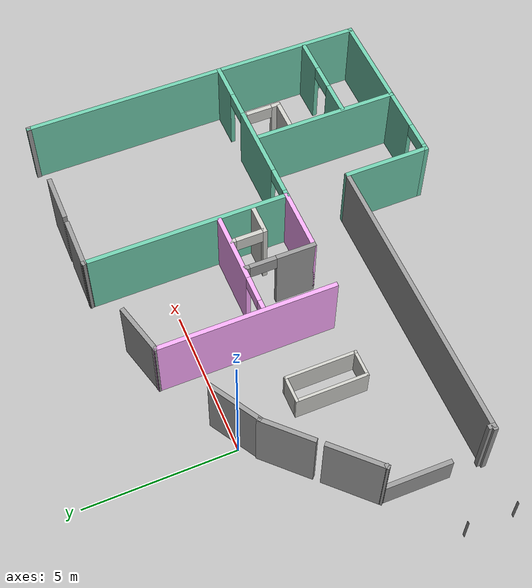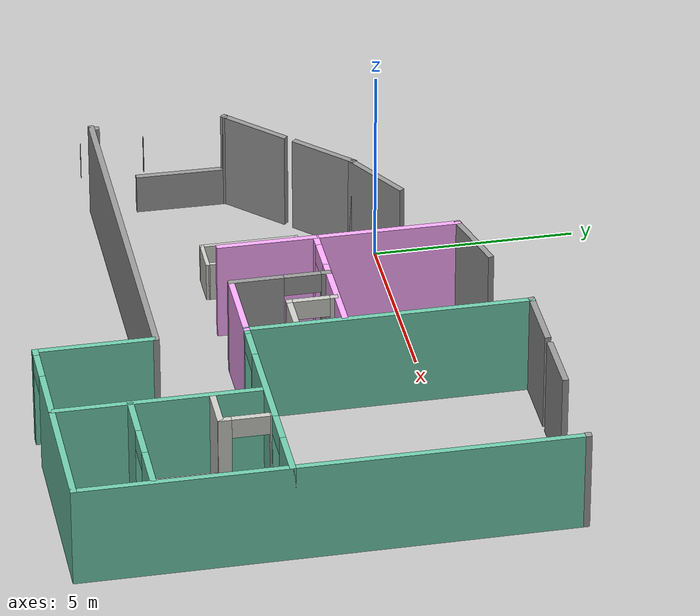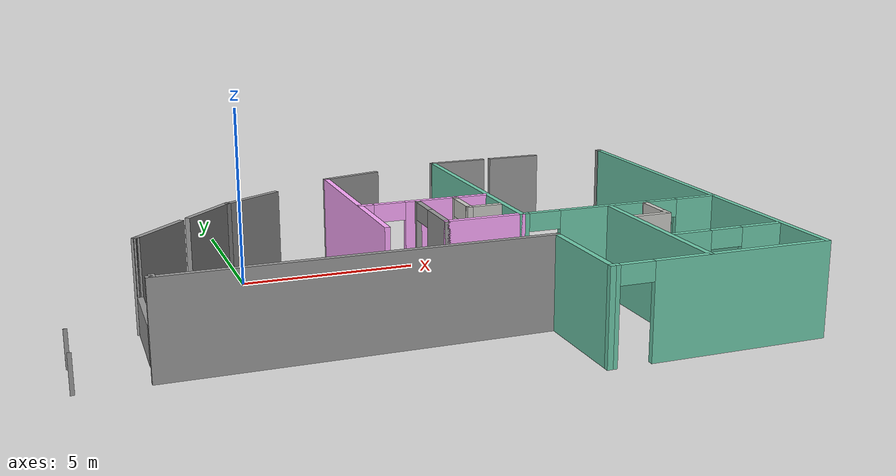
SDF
<?xml version='1.0'?>
<sdf version='1.6'>
  <model name='enso'>
    <pose frame=''>3.71903 -3.47117 0 0 -0 0</pose>
    <link name='Wall_23'>
      <collision name='Wall_23_Collision'>
        <geometry>
          <box>
            <size>12 0.15 2.5</size>
          </box>
        </geometry>
        <pose frame=''>0 0 1.25 0 -0 0</pose>
      </collision>
      <visual name='Wall_23_Visual'>
        <pose frame=''>0 0 1.25 0 -0 0</pose>
        <geometry>
          <box>
            <size>12 0.15 2.5</size>
          </box>
        </geometry>
        <material>
          <script>
            <uri>file://media/materials/scripts/gazebo.material</uri>
            <name>Gazebo/Grey</name>
          </script>
          <ambient>0.435294 0.796078 0.67451 1</ambient>
        </material>
        <meta>
          <layer>0</layer>
        </meta>
      </visual>
      <pose frame=''>8.72974 -0.008427 0 0 -0 1.5708</pose>
    </link>
    <link name='Wall_25'>
      <pose frame=''>5.80474 -5.93343 0 0 -0 3.14159</pose>
      <visual name='Wall_25_Visual_0'>
        <pose frame=''>-0.581761 0 1.25 0 -0 0</pose>
        <geometry>
          <box>
            <size>4.83648 0.15 2.5</size>
          </box>
        </geometry>
        <material>
          <script>
            <uri>file://media/materials/scripts/gazebo.material</uri>
            <name>Gazebo/Grey</name>
          </script>
          <ambient>0.435294 0.796078 0.67451 1</ambient>
        </material>
        <meta>
          <layer>0</layer>
        </meta>
      </visual>
      <collision name='Wall_25_Collision_0'>
        <geometry>
          <box>
            <size>4.83648 0.15 2.5</size>
          </box>
        </geometry>
        <pose frame=''>-0.581761 0 1.25 0 -0 0</pose>
      </collision>
      <visual name='Wall_25_Visual_1'>
        <pose frame=''>2.86824 0 1.25 0 -0 0</pose>
        <geometry>
          <box>
            <size>0.263522 0.15 2.5</size>
          </box>
        </geometry>
        <material>
          <script>
            <uri>file://media/materials/scripts/gazebo.material</uri>
            <name>Gazebo/Grey</name>
          </script>
          <ambient>0.435294 0.796078 0.67451 1</ambient>
        </material>
        <meta>
          <layer>0</layer>
        </meta>
      </visual>
      <collision name='Wall_25_Collision_1'>
        <geometry>
          <box>
            <size>0.263522 0.15 2.5</size>
          </box>
        </geometry>
        <pose frame=''>2.86824 0 1.25 0 -0 0</pose>
      </collision>
      <visual name='Wall_25_Visual_2'>
        <pose frame=''>2.28648 0 2.25 0 -0 0</pose>
        <geometry>
          <box>
            <size>0.9 0.15 0.5</size>
          </box>
        </geometry>
        <material>
          <script>
            <uri>file://media/materials/scripts/gazebo.material</uri>
            <name>Gazebo/Grey</name>
          </script>
          <ambient>0.435294 0.796078 0.67451 1</ambient>
        </material>
        <meta>
          <layer>0</layer>
        </meta>
      </visual>
      <collision name='Wall_25_Collision_2'>
        <geometry>
          <box>
            <size>0.9 0.15 0.5</size>
          </box>
        </geometry>
        <pose frame=''>2.28648 0 2.25 0 -0 0</pose>
      </collision>
    </link>
    <link name='Wall_26'>
      <collision name='Wall_26_Collision'>
        <geometry>
          <box>
            <size>3 0.15 2.5</size>
          </box>
        </geometry>
        <pose frame=''>0 0 1.25 0 -0 0</pose>
      </collision>
      <visual name='Wall_26_Visual'>
        <pose frame=''>0 0 1.25 0 -0 0</pose>
        <geometry>
          <box>
            <size>3 0.15 2.5</size>
          </box>
        </geometry>
        <material>
          <script>
            <uri>file://media/materials/scripts/gazebo.material</uri>
            <name>Gazebo/Grey</name>
          </script>
          <ambient>0.435294 0.796078 0.67451 1</ambient>
        </material>
        <meta>
          <layer>0</layer>
        </meta>
      </visual>
      <pose frame=''>2.87974 -4.50843 0 0 -0 1.5708</pose>
    </link>
    <link name='Wall_27'>
      <collision name='Wall_27_Collision'>
        <geometry>
          <box>
            <size>10 0.15 2.5</size>
          </box>
        </geometry>
        <pose frame=''>0 0 1.25 0 -0 0</pose>
      </collision>
      <visual name='Wall_27_Visual'>
        <pose frame=''>0 0 1.25 0 -0 0</pose>
        <geometry>
          <box>
            <size>10 0.15 2.5</size>
          </box>
        </geometry>
        <material>
          <script>
            <uri>file://media/materials/scripts/gazebo.material</uri>
            <name>Gazebo/Grey</name>
          </script>
          <ambient>1 1 1 1</ambient>
        </material>
        <meta>
          <layer>0</layer>
        </meta>
      </visual>
      <pose frame=''>-2.04526 -3.08343 0 0 -0 3.14159</pose>
    </link>
    <link name='Wall_32'>
      <pose frame=''>5.80474 5.91657 0 0 -0 3.14159</pose>
      <visual name='Wall_32_Visual_0'>
        <pose frame=''>-2.91311 0 1.25 0 -0 0</pose>
        <geometry>
          <box>
            <size>0.173771 0.15 2.5</size>
          </box>
        </geometry>
        <material>
          <script>
            <uri>file://media/materials/scripts/gazebo.material</uri>
            <name>Gazebo/Grey</name>
          </script>
          <ambient>1 1 1 1</ambient>
        </material>
        <meta>
          <layer>0</layer>
        </meta>
      </visual>
      <collision name='Wall_32_Collision_0'>
        <geometry>
          <box>
            <size>0.173771 0.15 2.5</size>
          </box>
        </geometry>
        <pose frame=''>-2.91311 0 1.25 0 -0 0</pose>
      </collision>
      <visual name='Wall_32_Visual_1'>
        <pose frame=''>0.198771 0 1.25 0 -0 0</pose>
        <geometry>
          <box>
            <size>1.65 0.15 2.5</size>
          </box>
        </geometry>
        <material>
          <script>
            <uri>file://media/materials/scripts/gazebo.material</uri>
            <name>Gazebo/Grey</name>
          </script>
          <ambient>1 1 1 1</ambient>
        </material>
        <meta>
          <layer>0</layer>
        </meta>
      </visual>
      <collision name='Wall_32_Collision_1'>
        <geometry>
          <box>
            <size>1.65 0.15 2.5</size>
          </box>
        </geometry>
        <pose frame=''>0.198771 0 1.25 0 -0 0</pose>
      </collision>
      <visual name='Wall_32_Visual_2'>
        <pose frame=''>2.10689 0 1.25 0 -0 0</pose>
        <geometry>
          <box>
            <size>1.78623 0.15 2.5</size>
          </box>
        </geometry>
        <material>
          <script>
            <uri>file://media/materials/scripts/gazebo.material</uri>
            <name>Gazebo/Grey</name>
          </script>
          <ambient>1 1 1 1</ambient>
        </material>
        <meta>
          <layer>0</layer>
        </meta>
      </visual>
      <collision name='Wall_32_Collision_2'>
        <geometry>
          <box>
            <size>1.78623 0.15 2.5</size>
          </box>
        </geometry>
        <pose frame=''>2.10689 0 1.25 0 -0 0</pose>
      </collision>
    </link>
    <link name='Wall_33'>
      <pose frame=''>1.02033 5.41835 0 0 0 -2.87979</pose>
      <visual name='Wall_33_Visual_0'>
        <pose frame=''>-1.91898 0 1.25 0 -0 0</pose>
        <geometry>
          <box>
            <size>0.16203 0.15 2.5</size>
          </box>
        </geometry>
        <material>
          <script>
            <uri>file://media/materials/scripts/gazebo.material</uri>
            <name>Gazebo/Grey</name>
          </script>
          <ambient>1 1 1 1</ambient>
        </material>
        <meta>
          <layer>0</layer>
        </meta>
      </visual>
      <collision name='Wall_33_Collision_0'>
        <geometry>
          <box>
            <size>0.16203 0.15 2.5</size>
          </box>
        </geometry>
        <pose frame=''>-1.91898 0 1.25 0 -0 0</pose>
      </collision>
      <visual name='Wall_33_Visual_1'>
        <pose frame=''>1.08102 0 1.25 0 -0 0</pose>
        <geometry>
          <box>
            <size>1.83797 0.15 2.5</size>
          </box>
        </geometry>
        <material>
          <script>
            <uri>file://media/materials/scripts/gazebo.material</uri>
            <name>Gazebo/Grey</name>
          </script>
          <ambient>1 1 1 1</ambient>
        </material>
        <meta>
          <layer>0</layer>
        </meta>
      </visual>
      <collision name='Wall_33_Collision_1'>
        <geometry>
          <box>
            <size>1.83797 0.15 2.5</size>
          </box>
        </geometry>
        <pose frame=''>1.08102 0 1.25 0 -0 0</pose>
      </collision>
      <visual name='Wall_33_Visual_2'>
        <pose frame=''>1.97601 0 1.25 0 -0 0</pose>
        <geometry>
          <box>
            <size>0.047989 0.15 2.5</size>
          </box>
        </geometry>
        <material>
          <script>
            <uri>file://media/materials/scripts/gazebo.material</uri>
            <name>Gazebo/Grey</name>
          </script>
          <ambient>1 1 1 1</ambient>
        </material>
        <meta>
          <layer>0</layer>
        </meta>
      </visual>
      <collision name='Wall_33_Collision_2'>
        <geometry>
          <box>
            <size>0.047989 0.15 2.5</size>
          </box>
        </geometry>
        <pose frame=''>1.97601 0 1.25 0 -0 0</pose>
      </collision>
    </link>
    <link name='Wall_38'>
      <pose frame=''>-2.48601 3.94754 0 0 0 -2.60816</pose>
      <visual name='Wall_38_Visual_0'>
        <pose frame=''>-1.94853 0 1.25 0 -0 0</pose>
        <geometry>
          <box>
            <size>0.078275 0.15 2.5</size>
          </box>
        </geometry>
        <material>
          <script>
            <uri>file://media/materials/scripts/gazebo.material</uri>
            <name>Gazebo/Grey</name>
          </script>
          <ambient>1 1 1 1</ambient>
        </material>
        <meta>
          <layer>0</layer>
        </meta>
      </visual>
      <collision name='Wall_38_Collision_0'>
        <geometry>
          <box>
            <size>0.078275 0.15 2.5</size>
          </box>
        </geometry>
        <pose frame=''>-1.94853 0 1.25 0 -0 0</pose>
      </collision>
      <visual name='Wall_38_Visual_1'>
        <pose frame=''>1.03914 0 1.25 0 -0 0</pose>
        <geometry>
          <box>
            <size>1.89707 0.15 2.5</size>
          </box>
        </geometry>
        <material>
          <script>
            <uri>file://media/materials/scripts/gazebo.material</uri>
            <name>Gazebo/Grey</name>
          </script>
          <ambient>1 1 1 1</ambient>
        </material>
        <meta>
          <layer>0</layer>
        </meta>
      </visual>
      <collision name='Wall_38_Collision_1'>
        <geometry>
          <box>
            <size>1.89707 0.15 2.5</size>
          </box>
        </geometry>
        <pose frame=''>1.03914 0 1.25 0 -0 0</pose>
      </collision>
      <visual name='Wall_38_Visual_2'>
        <pose frame=''>1.91783 0 1.25 0 -0 0</pose>
        <geometry>
          <box>
            <size>0.139687 0.15 2.5</size>
          </box>
        </geometry>
        <material>
          <script>
            <uri>file://media/materials/scripts/gazebo.material</uri>
            <name>Gazebo/Grey</name>
          </script>
          <ambient>1 1 1 1</ambient>
        </material>
        <meta>
          <layer>0</layer>
        </meta>
      </visual>
      <collision name='Wall_38_Collision_2'>
        <geometry>
          <box>
            <size>0.139687 0.15 2.5</size>
          </box>
        </geometry>
        <pose frame=''>1.91783 0 1.25 0 -0 0</pose>
      </collision>
    </link>
    <link name='Wall_39'>
      <pose frame=''>-5.51449 1.62406 0 0 0 -2.35634</pose>
      <visual name='Wall_39_Visual_0'>
        <pose frame=''>-1.08396 0 1.25 0 -0 0</pose>
        <geometry>
          <box>
            <size>1.83207 0.15 2.5</size>
          </box>
        </geometry>
        <material>
          <script>
            <uri>file://media/materials/scripts/gazebo.material</uri>
            <name>Gazebo/Grey</name>
          </script>
          <ambient>1 1 1 1</ambient>
        </material>
        <meta>
          <layer>0</layer>
        </meta>
      </visual>
      <collision name='Wall_39_Collision_0'>
        <geometry>
          <box>
            <size>1.83207 0.15 2.5</size>
          </box>
        </geometry>
        <pose frame=''>-1.08396 0 1.25 0 -0 0</pose>
      </collision>
      <visual name='Wall_39_Visual_1'>
        <pose frame=''>1.03265 0 1.25 0 -0 0</pose>
        <geometry>
          <box>
            <size>1.93469 0.15 2.5</size>
          </box>
        </geometry>
        <material>
          <script>
            <uri>file://media/materials/scripts/gazebo.material</uri>
            <name>Gazebo/Grey</name>
          </script>
          <ambient>1 1 1 1</ambient>
        </material>
        <meta>
          <layer>0</layer>
        </meta>
      </visual>
      <collision name='Wall_39_Collision_1'>
        <geometry>
          <box>
            <size>1.93469 0.15 2.5</size>
          </box>
        </geometry>
        <pose frame=''>1.03265 0 1.25 0 -0 0</pose>
      </collision>
      <visual name='Wall_39_Visual_2'>
        <pose frame=''>1.96603 0 1.25 0 -0 0</pose>
        <geometry>
          <box>
            <size>0.067924 0.15 2.5</size>
          </box>
        </geometry>
        <material>
          <script>
            <uri>file://media/materials/scripts/gazebo.material</uri>
            <name>Gazebo/Grey</name>
          </script>
          <ambient>1 1 1 1</ambient>
        </material>
        <meta>
          <layer>0</layer>
        </meta>
      </visual>
      <collision name='Wall_39_Collision_2'>
        <geometry>
          <box>
            <size>0.067924 0.15 2.5</size>
          </box>
        </geometry>
        <pose frame=''>1.96603 0 1.25 0 -0 0</pose>
      </collision>
    </link>
    <link name='Wall_40'>
      <pose frame=''>-6.87587 -1.41191 0 0 0 -1.58291</pose>
      <visual name='Wall_40_Visual_0'>
        <pose frame=''>-1.67475 0 1.25 0 -0 0</pose>
        <geometry>
          <box>
            <size>0.130578 0.15 2.5</size>
          </box>
        </geometry>
        <material>
          <script>
            <uri>file://media/materials/scripts/gazebo.material</uri>
            <name>Gazebo/Grey</name>
          </script>
          <ambient>1 1 1 1</ambient>
        </material>
        <meta>
          <layer>0</layer>
        </meta>
      </visual>
      <collision name='Wall_40_Collision_0'>
        <geometry>
          <box>
            <size>0.130578 0.15 2.5</size>
          </box>
        </geometry>
        <pose frame=''>-1.67475 0 1.25 0 -0 0</pose>
      </collision>
      <visual name='Wall_40_Visual_1'>
        <pose frame=''>1.61355 0 1.25 0 -0 0</pose>
        <geometry>
          <box>
            <size>0.252987 0.15 2.5</size>
          </box>
        </geometry>
        <material>
          <script>
            <uri>file://media/materials/scripts/gazebo.material</uri>
            <name>Gazebo/Grey</name>
          </script>
          <ambient>1 1 1 1</ambient>
        </material>
        <meta>
          <layer>0</layer>
        </meta>
      </visual>
      <collision name='Wall_40_Collision_1'>
        <geometry>
          <box>
            <size>0.252987 0.15 2.5</size>
          </box>
        </geometry>
        <pose frame=''>1.61355 0 1.25 0 -0 0</pose>
      </collision>
      <visual name='Wall_40_Visual_2'>
        <pose frame=''>-0.511205 0 0.5 0 -0 0</pose>
        <geometry>
          <box>
            <size>2.19652 0.15 1</size>
          </box>
        </geometry>
        <material>
          <script>
            <uri>file://media/materials/scripts/gazebo.material</uri>
            <name>Gazebo/Grey</name>
          </script>
          <ambient>1 1 1 1</ambient>
        </material>
        <meta>
          <layer>0</layer>
        </meta>
      </visual>
      <collision name='Wall_40_Collision_2'>
        <geometry>
          <box>
            <size>2.19652 0.15 1</size>
          </box>
        </geometry>
        <pose frame=''>-0.511205 0 0.5 0 -0 0</pose>
      </collision>
    </link>
    <link name='Wall_42'>
      <pose frame=''>-7.82104 -3.07683 0 0 -0 3.14159</pose>
      <visual name='Wall_42_Visual_0'>
        <pose frame=''>-0.947929 0 0.5 0 -0 0</pose>
        <geometry>
          <box>
            <size>0.054143 0.1 1</size>
          </box>
        </geometry>
        <material>
          <script>
            <uri>file://media/materials/scripts/gazebo.material</uri>
            <name>Gazebo/Grey</name>
          </script>
          <ambient>1 1 1 1</ambient>
        </material>
        <meta>
          <layer>0</layer>
        </meta>
      </visual>
      <collision name='Wall_42_Collision_0'>
        <geometry>
          <box>
            <size>0.054143 0.1 1</size>
          </box>
        </geometry>
        <pose frame=''>-0.947929 0 0.5 0 -0 0</pose>
      </collision>
    </link>
    <link name='Wall_44'>
      <pose frame=''>-7.79487 -0.65641 0 0 0 -2.37228</pose>
      <visual name='Wall_44_Visual_0'>
        <pose frame=''>-1.32003 0 0.5 0 -0 0</pose>
        <geometry>
          <box>
            <size>0.074579 0.1 1</size>
          </box>
        </geometry>
        <material>
          <script>
            <uri>file://media/materials/scripts/gazebo.material</uri>
            <name>Gazebo/Grey</name>
          </script>
          <ambient>1 1 1 1</ambient>
        </material>
        <meta>
          <layer>0</layer>
        </meta>
      </visual>
      <collision name='Wall_44_Collision_0'>
        <geometry>
          <box>
            <size>0.074579 0.1 1</size>
          </box>
        </geometry>
        <pose frame=''>-1.32003 0 0.5 0 -0 0</pose>
      </collision>
    </link>
    <link name='Wall_45'>
      <pose frame=''>-8.74004 -2.32133 0 0 0 -1.57874</pose>
      <visual name='Wall_45_Visual_0'>
        <pose frame=''>-0.801589 0 0.5 0 -0 0</pose>
        <geometry>
          <box>
            <size>0.008279 0.1 1</size>
          </box>
        </geometry>
        <material>
          <script>
            <uri>file://media/materials/scripts/gazebo.material</uri>
            <name>Gazebo/Grey</name>
          </script>
          <ambient>1 1 1 1</ambient>
        </material>
        <meta>
          <layer>0</layer>
        </meta>
      </visual>
      <collision name='Wall_45_Collision_0'>
        <geometry>
          <box>
            <size>0.008279 0.1 1</size>
          </box>
        </geometry>
        <pose frame=''>-0.801589 0 0.5 0 -0 0</pose>
      </collision>
      <visual name='Wall_45_Visual_1'>
        <pose frame=''>0.80414 0 0.5 0 -0 0</pose>
        <geometry>
          <box>
            <size>0.003179 0.1 1</size>
          </box>
        </geometry>
        <material>
          <script>
            <uri>file://media/materials/scripts/gazebo.material</uri>
            <name>Gazebo/Grey</name>
          </script>
          <ambient>1 1 1 1</ambient>
        </material>
        <meta>
          <layer>0</layer>
        </meta>
      </visual>
      <collision name='Wall_45_Collision_1'>
        <geometry>
          <box>
            <size>0.003179 0.1 1</size>
          </box>
        </geometry>
        <pose frame=''>0.80414 0 0.5 0 -0 0</pose>
      </collision>
    </link>
    <link name='Wall_47'>
      <collision name='Wall_47_Collision'>
        <geometry>
          <box>
            <size>7 0.15 2.5</size>
          </box>
        </geometry>
        <pose frame=''>0 0 1.25 0 -0 0</pose>
      </collision>
      <visual name='Wall_47_Visual'>
        <pose frame=''>0 0 1.25 0 -0 0</pose>
        <geometry>
          <box>
            <size>7 0.15 2.5</size>
          </box>
        </geometry>
        <material>
          <script>
            <uri>file://media/materials/scripts/gazebo.material</uri>
            <name>Gazebo/Grey</name>
          </script>
          <ambient>0.435294 0.796078 0.67451 1</ambient>
        </material>
        <meta>
          <layer>0</layer>
        </meta>
      </visual>
      <pose frame=''>2.87974 2.49157 0 0 0 -1.5708</pose>
    </link>
    <link name='Wall_49'>
      <collision name='Wall_49_Collision'>
        <geometry>
          <box>
            <size>6 0.15 2.5</size>
          </box>
        </geometry>
        <pose frame=''>0 0 1.25 0 -0 0</pose>
      </collision>
      <visual name='Wall_49_Visual'>
        <pose frame=''>0 0 1.25 0 -0 0</pose>
        <geometry>
          <box>
            <size>6 0.15 2.5</size>
          </box>
        </geometry>
        <material>
          <script>
            <uri>file://media/materials/scripts/gazebo.material</uri>
            <name>Gazebo/Grey</name>
          </script>
          <ambient>1 0.666667 1 1</ambient>
        </material>
        <meta>
          <layer>0</layer>
        </meta>
      </visual>
      <pose frame=''>-0.839078 1.99512 0 0 0 -1.5708</pose>
    </link>
    <link name='Wall_51'>
      <pose frame=''>0.983034 1.42639 0 0 -0 0</pose>
      <visual name='Wall_51_Visual_0'>
        <pose frame=''>-1.66426 0 1.25 0 -0 0</pose>
        <geometry>
          <box>
            <size>0.421471 0.15 2.5</size>
          </box>
        </geometry>
        <material>
          <script>
            <uri>file://media/materials/scripts/gazebo.material</uri>
            <name>Gazebo/Grey</name>
          </script>
          <ambient>1 0.666667 1 1</ambient>
        </material>
        <meta>
          <layer>0</layer>
        </meta>
      </visual>
      <collision name='Wall_51_Collision_0'>
        <geometry>
          <box>
            <size>0.421471 0.15 2.5</size>
          </box>
        </geometry>
        <pose frame=''>-1.66426 0 1.25 0 -0 0</pose>
      </collision>
      <visual name='Wall_51_Visual_1'>
        <pose frame=''>0.660736 0 1.25 0 -0 0</pose>
        <geometry>
          <box>
            <size>2.42853 0.15 2.5</size>
          </box>
        </geometry>
        <material>
          <script>
            <uri>file://media/materials/scripts/gazebo.material</uri>
            <name>Gazebo/Grey</name>
          </script>
          <ambient>1 0.666667 1 1</ambient>
        </material>
        <meta>
          <layer>0</layer>
        </meta>
      </visual>
      <collision name='Wall_51_Collision_1'>
        <geometry>
          <box>
            <size>2.42853 0.15 2.5</size>
          </box>
        </geometry>
        <pose frame=''>0.660736 0 1.25 0 -0 0</pose>
      </collision>
      <visual name='Wall_51_Visual_2'>
        <pose frame=''>-1.00353 0 2.25 0 -0 0</pose>
        <geometry>
          <box>
            <size>0.9 0.15 0.5</size>
          </box>
        </geometry>
        <material>
          <script>
            <uri>file://media/materials/scripts/gazebo.material</uri>
            <name>Gazebo/Grey</name>
          </script>
          <ambient>1 0.666667 1 1</ambient>
        </material>
        <meta>
          <layer>0</layer>
        </meta>
      </visual>
      <collision name='Wall_51_Collision_2'>
        <geometry>
          <box>
            <size>0.9 0.15 0.5</size>
          </box>
        </geometry>
        <pose frame=''>-1.00353 0 2.25 0 -0 0</pose>
      </collision>
    </link>
    <link name='Wall_53'>
      <collision name='Wall_53_Collision'>
        <geometry>
          <box>
            <size>2.25 0.15 2.5</size>
          </box>
        </geometry>
        <pose frame=''>0 0 1.25 0 -0 0</pose>
      </collision>
      <visual name='Wall_53_Visual'>
        <pose frame=''>0 0 1.25 0 -0 0</pose>
        <geometry>
          <box>
            <size>2.25 0.15 2.5</size>
          </box>
        </geometry>
        <material>
          <script>
            <uri>file://media/materials/scripts/gazebo.material</uri>
            <name>Gazebo/Grey</name>
          </script>
          <ambient>1 0.666667 1 1</ambient>
        </material>
        <meta>
          <layer>0</layer>
        </meta>
      </visual>
      <pose frame=''>1.82974 -0.933428 0 0 -0 3.14159</pose>
    </link>
    <link name='Wall_54'>
      <pose frame=''>0.779736 0.241573 0 0 -0 1.5708</pose>
      <visual name='Wall_54_Visual_0'>
        <pose frame=''>-0.57517 0 1.25 0 -0 0</pose>
        <geometry>
          <box>
            <size>1.34966 0.15 2.5</size>
          </box>
        </geometry>
        <material>
          <script>
            <uri>file://media/materials/scripts/gazebo.material</uri>
            <name>Gazebo/Grey</name>
          </script>
          <ambient>1 1 1 1</ambient>
        </material>
        <meta>
          <layer>0</layer>
        </meta>
      </visual>
      <collision name='Wall_54_Collision_0'>
        <geometry>
          <box>
            <size>1.34966 0.15 2.5</size>
          </box>
        </geometry>
        <pose frame=''>-0.57517 0 1.25 0 -0 0</pose>
      </collision>
      <visual name='Wall_54_Visual_1'>
        <pose frame=''>1.12483 0 1.25 0 -0 0</pose>
        <geometry>
          <box>
            <size>0.250339 0.15 2.5</size>
          </box>
        </geometry>
        <material>
          <script>
            <uri>file://media/materials/scripts/gazebo.material</uri>
            <name>Gazebo/Grey</name>
          </script>
          <ambient>1 1 1 1</ambient>
        </material>
        <meta>
          <layer>0</layer>
        </meta>
      </visual>
      <collision name='Wall_54_Collision_1'>
        <geometry>
          <box>
            <size>0.250339 0.15 2.5</size>
          </box>
        </geometry>
        <pose frame=''>1.12483 0 1.25 0 -0 0</pose>
      </collision>
      <visual name='Wall_54_Visual_2'>
        <pose frame=''>0.549661 0 2.25 0 -0 0</pose>
        <geometry>
          <box>
            <size>0.9 0.15 0.5</size>
          </box>
        </geometry>
        <material>
          <script>
            <uri>file://media/materials/scripts/gazebo.material</uri>
            <name>Gazebo/Grey</name>
          </script>
          <ambient>1 1 1 1</ambient>
        </material>
        <meta>
          <layer>0</layer>
        </meta>
      </visual>
      <collision name='Wall_54_Collision_2'>
        <geometry>
          <box>
            <size>0.9 0.15 0.5</size>
          </box>
        </geometry>
        <pose frame=''>0.549661 0 2.25 0 -0 0</pose>
      </collision>
    </link>
    <link name='Wall_58'>
      <pose frame=''>5.80474 -0.933428 0 0 -0 0</pose>
      <visual name='Wall_58_Visual_0'>
        <pose frame=''>-2.8632 0 1.25 0 -0 0</pose>
        <geometry>
          <box>
            <size>0.273604 0.15 2.5</size>
          </box>
        </geometry>
        <material>
          <script>
            <uri>file://media/materials/scripts/gazebo.material</uri>
            <name>Gazebo/Grey</name>
          </script>
          <ambient>0.435294 0.796078 0.67451 1</ambient>
        </material>
        <meta>
          <layer>0</layer>
        </meta>
      </visual>
      <collision name='Wall_58_Collision_0'>
        <geometry>
          <box>
            <size>0.273604 0.15 2.5</size>
          </box>
        </geometry>
        <pose frame=''>-2.8632 0 1.25 0 -0 0</pose>
      </collision>
      <visual name='Wall_58_Visual_1'>
        <pose frame=''>-0.50702 0 1.25 0 -0 0</pose>
        <geometry>
          <box>
            <size>2.63875 0.15 2.5</size>
          </box>
        </geometry>
        <material>
          <script>
            <uri>file://media/materials/scripts/gazebo.material</uri>
            <name>Gazebo/Grey</name>
          </script>
          <ambient>0.435294 0.796078 0.67451 1</ambient>
        </material>
        <meta>
          <layer>0</layer>
        </meta>
      </visual>
      <collision name='Wall_58_Collision_1'>
        <geometry>
          <box>
            <size>2.63875 0.15 2.5</size>
          </box>
        </geometry>
        <pose frame=''>-0.50702 0 1.25 0 -0 0</pose>
      </collision>
      <visual name='Wall_58_Visual_2'>
        <pose frame=''>2.35618 0 1.25 0 -0 0</pose>
        <geometry>
          <box>
            <size>1.28764 0.15 2.5</size>
          </box>
        </geometry>
        <material>
          <script>
            <uri>file://media/materials/scripts/gazebo.material</uri>
            <name>Gazebo/Grey</name>
          </script>
          <ambient>0.435294 0.796078 0.67451 1</ambient>
        </material>
        <meta>
          <layer>0</layer>
        </meta>
      </visual>
      <collision name='Wall_58_Collision_2'>
        <geometry>
          <box>
            <size>1.28764 0.15 2.5</size>
          </box>
        </geometry>
        <pose frame=''>2.35618 0 1.25 0 -0 0</pose>
      </collision>
      <visual name='Wall_58_Visual_3'>
        <pose frame=''>-2.2764 0 2.25 0 -0 0</pose>
        <geometry>
          <box>
            <size>0.9 0.15 0.5</size>
          </box>
        </geometry>
        <material>
          <script>
            <uri>file://media/materials/scripts/gazebo.material</uri>
            <name>Gazebo/Grey</name>
          </script>
          <ambient>0.435294 0.796078 0.67451 1</ambient>
        </material>
        <meta>
          <layer>0</layer>
        </meta>
      </visual>
      <collision name='Wall_58_Collision_3'>
        <geometry>
          <box>
            <size>0.9 0.15 0.5</size>
          </box>
        </geometry>
        <pose frame=''>-2.2764 0 2.25 0 -0 0</pose>
      </collision>
      <visual name='Wall_58_Visual_4'>
        <pose frame=''>1.26236 0 2.25 0 -0 0</pose>
        <geometry>
          <box>
            <size>0.9 0.15 0.5</size>
          </box>
        </geometry>
        <material>
          <script>
            <uri>file://media/materials/scripts/gazebo.material</uri>
            <name>Gazebo/Grey</name>
          </script>
          <ambient>0.435294 0.796078 0.67451 1</ambient>
        </material>
        <meta>
          <layer>0</layer>
        </meta>
      </visual>
      <collision name='Wall_58_Collision_4'>
        <geometry>
          <box>
            <size>0.9 0.15 0.5</size>
          </box>
        </geometry>
        <pose frame=''>1.26236 0 2.25 0 -0 0</pose>
      </collision>
    </link>
    <link name='Wall_60'>
      <collision name='Wall_60_Collision'>
        <geometry>
          <box>
            <size>5 0.15 2.5</size>
          </box>
        </geometry>
        <pose frame=''>0 0 1.25 0 -0 0</pose>
      </collision>
      <visual name='Wall_60_Visual'>
        <pose frame=''>0 0 1.25 0 -0 0</pose>
        <geometry>
          <box>
            <size>5 0.15 2.5</size>
          </box>
        </geometry>
        <material>
          <script>
            <uri>file://media/materials/scripts/gazebo.material</uri>
            <name>Gazebo/Grey</name>
          </script>
          <ambient>0.435294 0.796078 0.67451 1</ambient>
        </material>
        <meta>
          <layer>0</layer>
        </meta>
      </visual>
      <pose frame=''>5.45399 -3.49832 0 0 -0 1.5708</pose>
    </link>
    <link name='Wall_62'>
      <pose frame=''>7.06448 -4.10858 0 0 -0 0</pose>
      <visual name='Wall_62_Visual_0'>
        <pose frame=''>-1.03619 0 1.25 0 -0 0</pose>
        <geometry>
          <box>
            <size>1.17762 0.15 2.5</size>
          </box>
        </geometry>
        <material>
          <script>
            <uri>file://media/materials/scripts/gazebo.material</uri>
            <name>Gazebo/Grey</name>
          </script>
          <ambient>0.435294 0.796078 0.67451 1</ambient>
        </material>
        <meta>
          <layer>0</layer>
        </meta>
      </visual>
      <collision name='Wall_62_Collision_0'>
        <geometry>
          <box>
            <size>1.17762 0.15 2.5</size>
          </box>
        </geometry>
        <pose frame=''>-1.03619 0 1.25 0 -0 0</pose>
      </collision>
      <visual name='Wall_62_Visual_1'>
        <pose frame=''>1.03881 0 1.25 0 -0 0</pose>
        <geometry>
          <box>
            <size>1.17239 0.15 2.5</size>
          </box>
        </geometry>
        <material>
          <script>
            <uri>file://media/materials/scripts/gazebo.material</uri>
            <name>Gazebo/Grey</name>
          </script>
          <ambient>0.435294 0.796078 0.67451 1</ambient>
        </material>
        <meta>
          <layer>0</layer>
        </meta>
      </visual>
      <collision name='Wall_62_Collision_1'>
        <geometry>
          <box>
            <size>1.17239 0.15 2.5</size>
          </box>
        </geometry>
        <pose frame=''>1.03881 0 1.25 0 -0 0</pose>
      </collision>
      <visual name='Wall_62_Visual_2'>
        <pose frame=''>0.002615 0 2.25 0 -0 0</pose>
        <geometry>
          <box>
            <size>0.9 0.15 0.5</size>
          </box>
        </geometry>
        <material>
          <script>
            <uri>file://media/materials/scripts/gazebo.material</uri>
            <name>Gazebo/Grey</name>
          </script>
          <ambient>0.435294 0.796078 0.67451 1</ambient>
        </material>
        <meta>
          <layer>0</layer>
        </meta>
      </visual>
      <collision name='Wall_62_Collision_2'>
        <geometry>
          <box>
            <size>0.9 0.15 0.5</size>
          </box>
        </geometry>
        <pose frame=''>0.002615 0 2.25 0 -0 0</pose>
      </collision>
    </link>
    <link name='Wall_66'>
      <collision name='Wall_66_Collision'>
        <geometry>
          <box>
            <size>2.45 0.1 1</size>
          </box>
        </geometry>
        <pose frame=''>0 0 0.5 0 -0 0</pose>
      </collision>
      <visual name='Wall_66_Visual'>
        <pose frame=''>0 0 0.5 0 -0 0</pose>
        <geometry>
          <box>
            <size>2.45 0.1 1</size>
          </box>
        </geometry>
        <material>
          <script>
            <uri>file://media/materials/scripts/gazebo.material</uri>
            <name>Gazebo/CeilingTiled</name>
          </script>
          <ambient>1 1 1 1</ambient>
        </material>
        <meta>
          <layer>0</layer>
        </meta>
      </visual>
      <pose frame=''>-2.47203 0.229172 0 0 -0 1.5708</pose>
    </link>
    <link name='Wall_67'>
      <collision name='Wall_67_Collision'>
        <geometry>
          <box>
            <size>0.95 0.1 1</size>
          </box>
        </geometry>
        <pose frame=''>0 0 0.5 0 -0 0</pose>
      </collision>
      <visual name='Wall_67_Visual'>
        <pose frame=''>0 0 0.5 0 -0 0</pose>
        <geometry>
          <box>
            <size>0.95 0.1 1</size>
          </box>
        </geometry>
        <material>
          <script>
            <uri>file://media/materials/scripts/gazebo.material</uri>
            <name>Gazebo/CeilingTiled</name>
          </script>
          <ambient>1 1 1 1</ambient>
        </material>
        <meta>
          <layer>0</layer>
        </meta>
      </visual>
      <pose frame=''>-2.89703 1.40417 0 0 -0 3.14159</pose>
    </link>
    <link name='Wall_68'>
      <collision name='Wall_68_Collision'>
        <geometry>
          <box>
            <size>2.4501 0.1 1</size>
          </box>
        </geometry>
        <pose frame=''>0 0 0.5 0 -0 0</pose>
      </collision>
      <visual name='Wall_68_Visual'>
        <pose frame=''>0 0 0.5 0 -0 0</pose>
        <geometry>
          <box>
            <size>2.4501 0.1 1</size>
          </box>
        </geometry>
        <material>
          <script>
            <uri>file://media/materials/scripts/gazebo.material</uri>
            <name>Gazebo/CeilingTiled</name>
          </script>
          <ambient>1 1 1 1</ambient>
        </material>
        <meta>
          <layer>0</layer>
        </meta>
      </visual>
      <pose frame=''>-3.32204 0.229172 0 0 0 -1.5708</pose>
    </link>
    <link name='Wall_69'>
      <collision name='Wall_69_Collision'>
        <geometry>
          <box>
            <size>0.95 0.1 1</size>
          </box>
        </geometry>
        <pose frame=''>0 0 0.5 0 -0 0</pose>
      </collision>
      <visual name='Wall_69_Visual'>
        <pose frame=''>0 0 0.5 0 -0 0</pose>
        <geometry>
          <box>
            <size>0.95 0.1 1</size>
          </box>
        </geometry>
        <material>
          <script>
            <uri>file://media/materials/scripts/gazebo.material</uri>
            <name>Gazebo/CeilingTiled</name>
          </script>
          <ambient>1 1 1 1</ambient>
        </material>
        <meta>
          <layer>0</layer>
        </meta>
      </visual>
      <pose frame=''>-2.89703 -0.945828 0 0 -0 0</pose>
    </link>
    <link name='Wall_72'>
      <pose frame=''>1.87878 0.816982 0 0 0 -1.57047</pose>
      <visual name='Wall_72_Visual_0'>
        <pose frame=''>-0.526539 0 1.25 0 -0 0</pose>
        <geometry>
          <box>
            <size>0.196923 0.15 2.5</size>
          </box>
        </geometry>
        <material>
          <script>
            <uri>file://media/materials/scripts/gazebo.material</uri>
            <name>Gazebo/CeilingTiled</name>
          </script>
          <ambient>1 1 1 1</ambient>
        </material>
        <meta>
          <layer>0</layer>
        </meta>
      </visual>
      <collision name='Wall_72_Collision_0'>
        <geometry>
          <box>
            <size>0.196923 0.15 2.5</size>
          </box>
        </geometry>
        <pose frame=''>-0.526539 0 1.25 0 -0 0</pose>
      </collision>
      <visual name='Wall_72_Visual_1'>
        <pose frame=''>0.548461 0 1.25 0 -0 0</pose>
        <geometry>
          <box>
            <size>0.153077 0.15 2.5</size>
          </box>
        </geometry>
        <material>
          <script>
            <uri>file://media/materials/scripts/gazebo.material</uri>
            <name>Gazebo/CeilingTiled</name>
          </script>
          <ambient>1 1 1 1</ambient>
        </material>
        <meta>
          <layer>0</layer>
        </meta>
      </visual>
      <collision name='Wall_72_Collision_1'>
        <geometry>
          <box>
            <size>0.153077 0.15 2.5</size>
          </box>
        </geometry>
        <pose frame=''>0.548461 0 1.25 0 -0 0</pose>
      </collision>
      <visual name='Wall_72_Visual_2'>
        <pose frame=''>0.021923 0 2.25 0 -0 0</pose>
        <geometry>
          <box>
            <size>0.9 0.15 0.5</size>
          </box>
        </geometry>
        <material>
          <script>
            <uri>file://media/materials/scripts/gazebo.material</uri>
            <name>Gazebo/CeilingTiled</name>
          </script>
          <ambient>1 1 1 1</ambient>
        </material>
        <meta>
          <layer>0</layer>
        </meta>
      </visual>
      <collision name='Wall_72_Collision_2'>
        <geometry>
          <box>
            <size>0.9 0.15 0.5</size>
          </box>
        </geometry>
        <pose frame=''>0.021923 0 2.25 0 -0 0</pose>
      </collision>
    </link>
    <link name='Wall_73'>
      <collision name='Wall_73_Collision'>
        <geometry>
          <box>
            <size>1 0.15 2.5</size>
          </box>
        </geometry>
        <pose frame=''>0 0 1.25 0 -0 0</pose>
      </collision>
      <visual name='Wall_73_Visual'>
        <pose frame=''>0 0 1.25 0 -0 0</pose>
        <geometry>
          <box>
            <size>1 0.15 2.5</size>
          </box>
        </geometry>
        <material>
          <script>
            <uri>file://media/materials/scripts/gazebo.material</uri>
            <name>Gazebo/CeilingTiled</name>
          </script>
          <ambient>1 1 1 1</ambient>
        </material>
        <meta>
          <layer>0</layer>
        </meta>
      </visual>
      <pose frame=''>2.30378 0.266982 0 0 0 -0.000447</pose>
    </link>
    <link name='Wall_77'>
      <pose frame=''>6.52897 -1.63633 0 0 0 -1.5708</pose>
      <visual name='Wall_77_Visual_0'>
        <pose frame=''>-0.61287 0 1.25 0 -0 0</pose>
        <geometry>
          <box>
            <size>0.039261 0.15 2.5</size>
          </box>
        </geometry>
        <material>
          <script>
            <uri>file://media/materials/scripts/gazebo.material</uri>
            <name>Gazebo/CeilingTiled</name>
          </script>
          <ambient>1 1 1 1</ambient>
        </material>
        <meta>
          <layer>0</layer>
        </meta>
      </visual>
      <collision name='Wall_77_Collision_0'>
        <geometry>
          <box>
            <size>0.039261 0.15 2.5</size>
          </box>
        </geometry>
        <pose frame=''>-0.61287 0 1.25 0 -0 0</pose>
      </collision>
      <visual name='Wall_77_Visual_1'>
        <pose frame=''>0.46963 0 1.25 0 -0 0</pose>
        <geometry>
          <box>
            <size>0.325739 0.15 2.5</size>
          </box>
        </geometry>
        <material>
          <script>
            <uri>file://media/materials/scripts/gazebo.material</uri>
            <name>Gazebo/CeilingTiled</name>
          </script>
          <ambient>1 1 1 1</ambient>
        </material>
        <meta>
          <layer>0</layer>
        </meta>
      </visual>
      <collision name='Wall_77_Collision_1'>
        <geometry>
          <box>
            <size>0.325739 0.15 2.5</size>
          </box>
        </geometry>
        <pose frame=''>0.46963 0 1.25 0 -0 0</pose>
      </collision>
      <visual name='Wall_77_Visual_2'>
        <pose frame=''>-0.143239 0 2.25 0 -0 0</pose>
        <geometry>
          <box>
            <size>0.9 0.15 0.5</size>
          </box>
        </geometry>
        <material>
          <script>
            <uri>file://media/materials/scripts/gazebo.material</uri>
            <name>Gazebo/CeilingTiled</name>
          </script>
          <ambient>1 1 1 1</ambient>
        </material>
        <meta>
          <layer>0</layer>
        </meta>
      </visual>
      <collision name='Wall_77_Collision_2'>
        <geometry>
          <box>
            <size>0.9 0.15 0.5</size>
          </box>
        </geometry>
        <pose frame=''>-0.143239 0 2.25 0 -0 0</pose>
      </collision>
    </link>
    <link name='Wall_78'>
      <collision name='Wall_78_Collision'>
        <geometry>
          <box>
            <size>1.887 0.15 1</size>
          </box>
        </geometry>
        <pose frame=''>0 0 0.5 0 -0 0</pose>
      </collision>
      <visual name='Wall_78_Visual'>
        <pose frame=''>0 0 0.5 0 -0 0</pose>
        <geometry>
          <box>
            <size>1.887 0.15 1</size>
          </box>
        </geometry>
        <material>
          <script>
            <uri>file://media/materials/scripts/gazebo.material</uri>
            <name>Gazebo/CeilingTiled</name>
          </script>
          <ambient>1 1 1 1</ambient>
        </material>
        <meta>
          <layer>0</layer>
        </meta>
      </visual>
      <pose frame=''>6.52897 -3.06233 0 0 0 -1.5708</pose>
    </link>
    <link name='Wall_82'>
      <collision name='Wall_82_Collision'>
        <geometry>
          <box>
            <size>1.07 0.15 2.5</size>
          </box>
        </geometry>
        <pose frame=''>0 0 1.25 0 -0 0</pose>
      </collision>
      <visual name='Wall_82_Visual'>
        <pose frame=''>0 0 1.25 0 -0 0</pose>
        <geometry>
          <box>
            <size>1.07 0.15 2.5</size>
          </box>
        </geometry>
        <material>
          <script>
            <uri>file://media/materials/scripts/gazebo.material</uri>
            <name>Gazebo/CeilingTiled</name>
          </script>
          <ambient>1 1 1 1</ambient>
        </material>
        <meta>
          <layer>0</layer>
        </meta>
      </visual>
      <pose frame=''>6.06096 -2.20083 0 0 -0 0</pose>
    </link>
    <static>1</static>
  </model>
</sdf>
